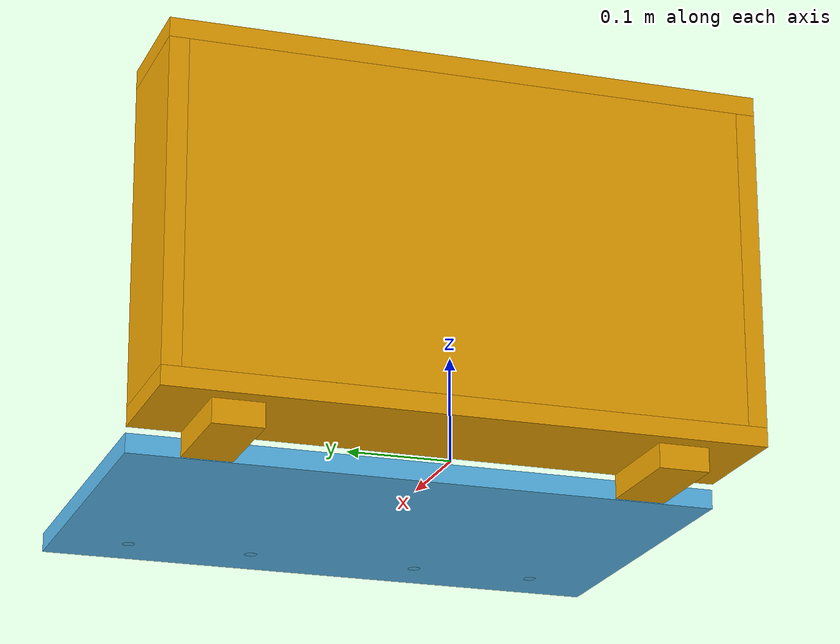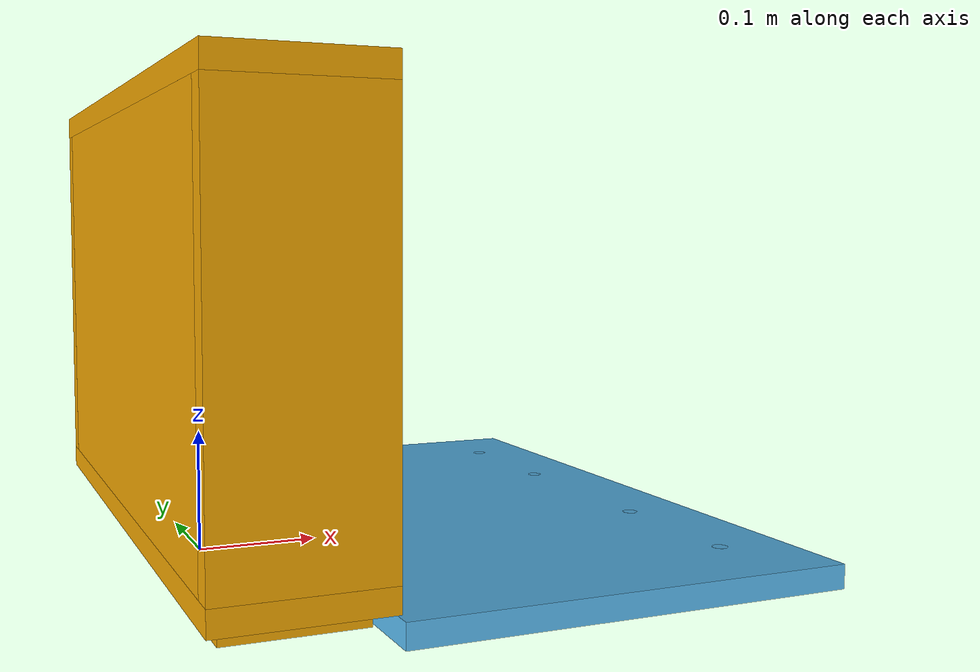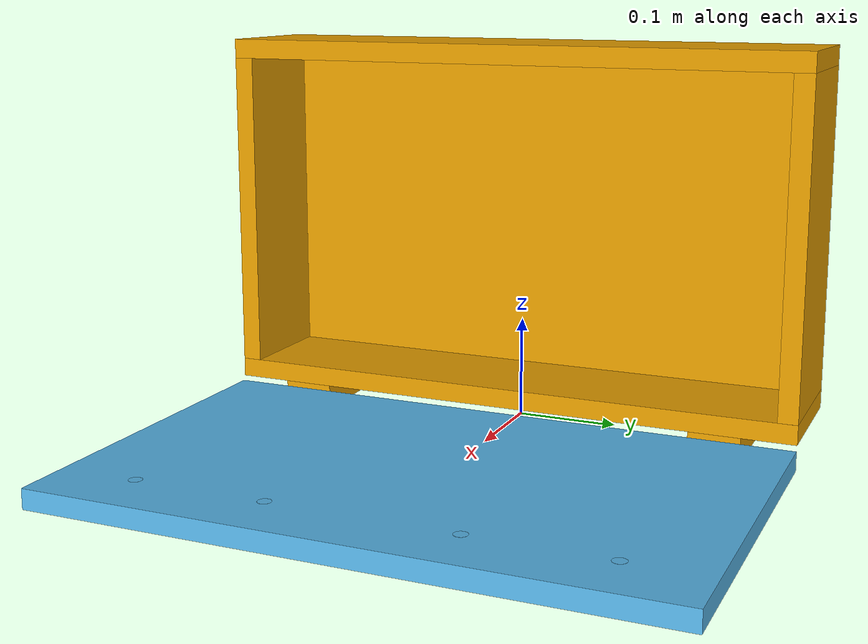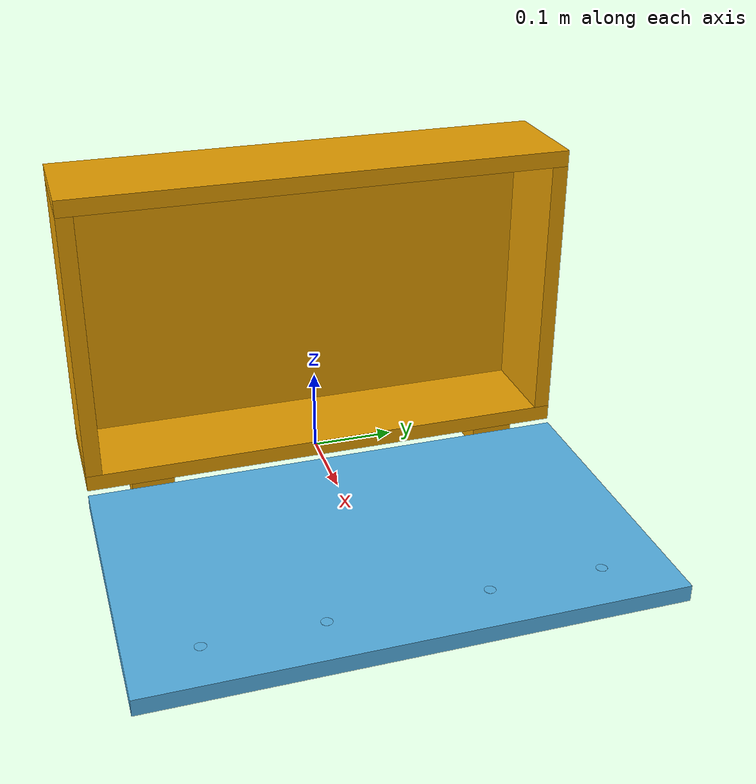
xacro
<?xml version="1.0" ?>
<!-- |    This document was autogenerated by xacro from model.urdf                     | -->
<!-- |    EDITING THIS FILE BY HAND IS NOT RECOMMENDED                                 | -->
<robot name="wooden_case">
  <joint name="wooden_case__lid_hinge" type="revolute">
    <parent link="wooden_case__base"/>
    <child link="wooden_case__lid"/>
    <origin rpy="0 0 0" xyz="0.06597 0      0.02857"/>
    <axis xyz="0 1 0"/>
    <limit effort="0.0" lower="-1.5707963267948966" upper="0.5235987755982988" velocity="0.0"/>
  </joint>
  <link name="wooden_case__base">
    <inertial>
      <mass value="3.9626366887499986"/>
      <origin rpy="0 0 0" xyz="-0.02218  0       0.17159"/>
      <inertia ixx="0.2135364168029657" ixy="0.0" ixz="0.0007793770806417083" iyy="0.07089428398599372" iyz="0.0" izz="0.15460392299497075"/>
    </inertial>
    <collision name="wooden_case__collision_back">
      <origin rpy="0 0 0" xyz="-0.05397  0       0.2018"/>
      <geometry>
        <box size="0.019049999999999997 0.5460999999999999 0.3175"/>
      </geometry>
    </collision>
    <collision name="wooden_case__collision_bottom">
      <origin rpy="0 0 0" xyz="0      0      0.03352"/>
      <geometry>
        <box size="0.127 0.5841999999999999 0.019049999999999997"/>
      </geometry>
    </collision>
    <collision name="wooden_case__collision_top">
      <origin rpy="0 0 0" xyz="0      0      0.37007"/>
      <geometry>
        <box size="0.127 0.5841999999999999 0.019049999999999997"/>
      </geometry>
    </collision>
    <collision name="wooden_case__collision_left">
      <origin rpy="0 0 0" xyz="0      -0.28257  0.2018"/>
      <geometry>
        <box size="0.127 0.019049999999999997 0.3175"/>
      </geometry>
    </collision>
    <collision name="wooden_case__collision_right">
      <origin rpy="0 0 0" xyz="0      0.28257 0.2018"/>
      <geometry>
        <box size="0.127 0.019049999999999997 0.3175"/>
      </geometry>
    </collision>
    <collision name="wooden_case__collision_block_left">
      <origin rpy="0 0 0" xyz="0.0095 -0.2151  0.012"/>
      <geometry>
        <box size="0.108 0.05 0.024"/>
      </geometry>
    </collision>
    <collision name="wooden_case__collision_block_right">
      <origin rpy="0 0 0" xyz="0.0095 0.2151 0.012"/>
      <geometry>
        <box size="0.108 0.05 0.024"/>
      </geometry>
    </collision>
    <visual name="wooden_case__visual_back">
      <origin rpy="0 0 0" xyz="-0.05397  0       0.2018"/>
      <geometry>
        <box size="0.019049999999999997 0.5460999999999999 0.3175"/>
      </geometry>
    </visual>
    <visual name="wooden_case__visual_bottom">
      <origin rpy="0 0 0" xyz="0      0      0.03352"/>
      <geometry>
        <box size="0.127 0.5841999999999999 0.019049999999999997"/>
      </geometry>
    </visual>
    <visual name="wooden_case__visual_top">
      <origin rpy="0 0 0" xyz="0      0      0.37007"/>
      <geometry>
        <box size="0.127 0.5841999999999999 0.019049999999999997"/>
      </geometry>
    </visual>
    <visual name="wooden_case__visual_left">
      <origin rpy="0 0 0" xyz="0      -0.28257  0.2018"/>
      <geometry>
        <box size="0.127 0.019049999999999997 0.3175"/>
      </geometry>
    </visual>
    <visual name="wooden_case__visual_right">
      <origin rpy="0 0 0" xyz="0      0.28257 0.2018"/>
      <geometry>
        <box size="0.127 0.019049999999999997 0.3175"/>
      </geometry>
    </visual>
    <visual name="wooden_case__visual_block_left">
      <origin rpy="0 0 0" xyz="0.0095 -0.2151  0.012"/>
      <geometry>
        <box size="0.108 0.05 0.024"/>
      </geometry>
    </visual>
    <visual name="wooden_case__visual_block_right">
      <origin rpy="0 0 0" xyz="0.0095 0.2151 0.012"/>
      <geometry>
        <box size="0.108 0.05 0.024"/>
      </geometry>
    </visual>
  </link>
  <link name="wooden_case__lid">
    <inertial>
      <mass value="1.9787379779999992"/>
      <origin rpy="0 0 0" xyz="0 0 0"/>
      <inertia ixx="0.05633673842708405" ixy="0" ixz="0" iyy="0.020911016446734258" iyz="0" izz="0.07712807338064145"/>
    </inertial>
    <collision name="wooden_case__collision">
      <origin rpy="0 0 0" xyz="0.1778   0      -0.01905"/>
      <geometry>
        <box size="0.35559999999999997 0.5841999999999999 0.019049999999999997"/>
      </geometry>
    </collision>
    <visual name="wooden_case__visual">
      <origin rpy="0 0 0" xyz="0.1778   0      -0.01905"/>
      <geometry>
        <box size="0.35559999999999997 0.5841999999999999 0.019049999999999997"/>
      </geometry>
    </visual>
    <visual name="wooden_case__tee_nut_1">
      <origin rpy="0 0 0" xyz="0.2998  -0.216   -0.01905"/>
      <geometry>
        <cylinder length="0.019240499999999997" radius="0.00635"/>
      </geometry>
    </visual>
    <visual name="wooden_case__tee_nut_2">
      <origin rpy="0 0 0" xyz="0.2998  -0.088   -0.01905"/>
      <geometry>
        <cylinder length="0.019240499999999997" radius="0.00635"/>
      </geometry>
    </visual>
    <visual name="wooden_case__tee_nut_3">
      <origin rpy="0 0 0" xyz="0.2998   0.088   -0.01905"/>
      <geometry>
        <cylinder length="0.019240499999999997" radius="0.00635"/>
      </geometry>
    </visual>
    <visual name="wooden_case__tee_nut_4">
      <origin rpy="0 0 0" xyz="0.2998   0.216   -0.01905"/>
      <geometry>
        <cylinder length="0.019240499999999997" radius="0.00635"/>
      </geometry>
    </visual>
  </link>
</robot>
